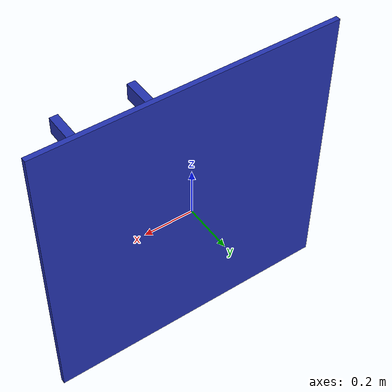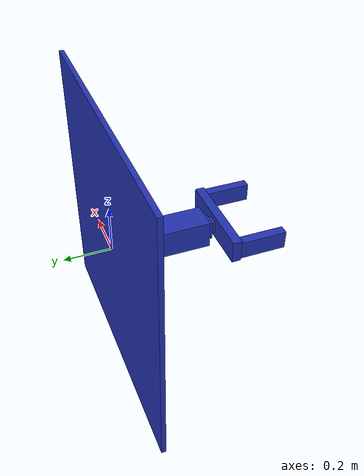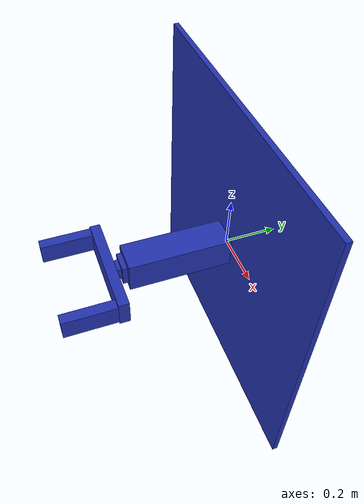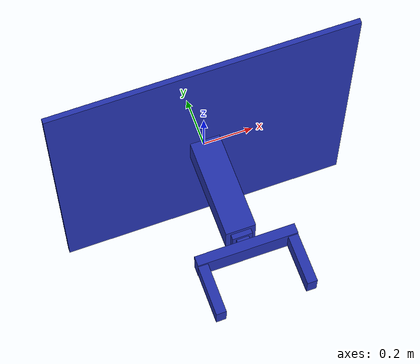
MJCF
<mujoco model="claw">
  <compiler angle="degree" coordinate="local" inertiafromgeom="true"/>
  <option integrator="RK4" timestep="0.01"/>
  <default>
    <joint damping="0" limited="true"/>
    <geom conaffinity="1" condim="3" friction="1.5 0.1 0.1" margin="0.01" rgba="0.14 0.2 0.7 1.0"/>
  </default>
  <worldbody>
    <body name="base" pos="0 0 0">
      <joint name='root' type='free' pos='0 0 0' limited='false' damping='0' armature='0' stiffness='0'/>
      <geom pos="0 0 0" size="0.6 0.01 0.6" type="box"/>
        <body name="upper_arm" pos="0 -0.21 0">
          <joint axis="1 0 0" name="arm_x" pos="0.0 0.0 0.0" range="-0.54 0.54" type="slide"/>
          <joint axis="0 0 1" name="arm_z" pos="0.0 0.0 0.0" range="-0.54 0.54" type="slide"/>
          <geom pos="0 0 0" size="0.06 0.2 0.06" type="box"/>
          <body name="lower_arm" pos="0 -0.02 0">
            <joint axis="0 1 0" name="arm_lift1" pos="0.0 0.0 0.0" range="-0.38 0" type="slide"/>
            <geom pos="0 0 0" size="0.04 0.2 0.04" type="box"/>
            <body name="lower_lower_arm" pos="0 -0.02 0">
              <joint axis="0 1 0" name="arm_lift2" pos="0.0 0.0 0.0" range="-0.38 0" type="slide"/>
              <geom pos="0 0 0" size="0.025 0.2 0.025" type="box"/>
              <body name="hand" pos="0 -0.22 0">
                <joint axis="0 1 0" name="arm_rot" pos="0.0 0.0 0.0" range="-180 180" type="hinge"/>
                <geom pos="0 0 0" size="0.2 0.02 0.05" type="box"/>
                <body name="finger1" pos="-0.18 -0.12 0">
                  <joint axis="1 0 0" name="finger1_slide" pos="0.0 0.0 0.0" range="0 0.16" type="slide"/>
                  <geom pos="0 0 0" size="0.02 0.1 0.04" type="box"/>
                </body>
                <body name="finger2" pos="0.18 -0.12 0">
                  <joint axis="1 0 0" name="finger2_slide" pos="0.0 0.0 0.0" range="-0.16 0" type="slide"/>
                  <geom pos="0 0 0" size="0.02 0.1 0.04" type="box"/>
                </body>
              </body>
            </body>
          </body>
        </body>
    </body>
  </worldbody>
</mujoco>
